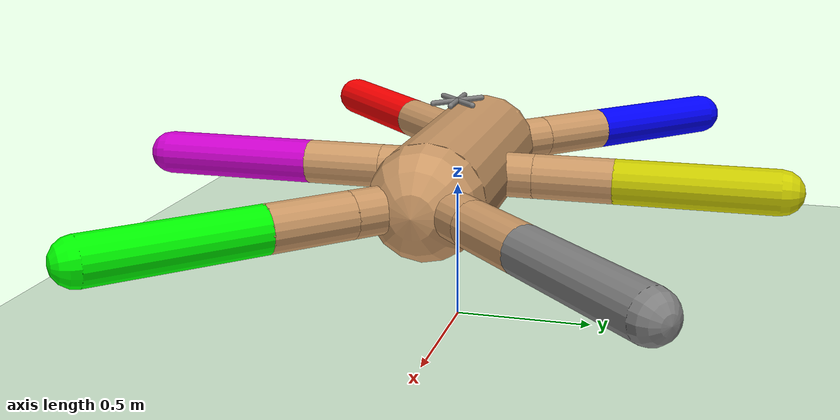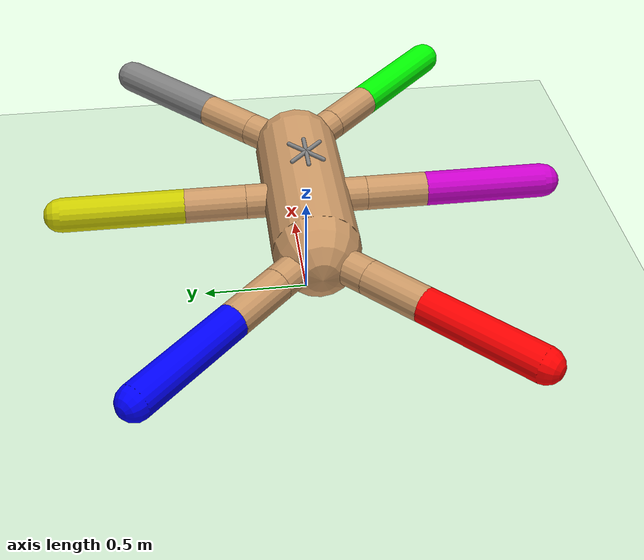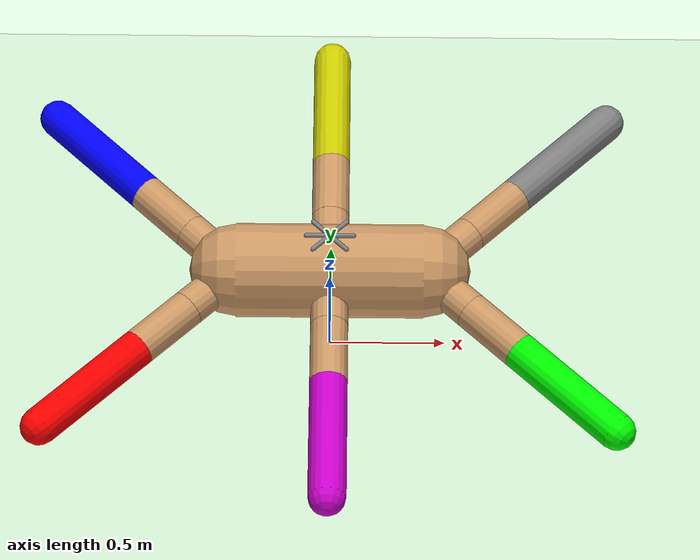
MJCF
<mujoco model="rangefinder-ant">
  <compiler angle="degree" coordinate="local" inertiafromgeom="true"/>
  <option integrator="RK4" timestep="0.01"/>
  <custom>
    <numeric data="0.0 0.0 0.55 1.0 0.0 0.0 0.0 0.0 1.0 0.0 -1.0 0.0 1.0 0.0 -1.0 0.0 -1.0 0.0 -1.0" name="init_qpos"/>
  </custom>
  <default>
    <joint armature="1" damping="1" limited="true"/>
    <geom conaffinity="0" condim="3" density="5.0" friction="1 0.5 0.5" margin="0.01" rgba="0.8 0.6 0.4 1"/>
  </default>
  <asset>
    <texture builtin="gradient" height="100" rgb1="1 1 1" rgb2="0 0 0" type="skybox" width="100"/>
    <texture builtin="flat" height="1278" mark="cross" markrgb="1 1 1" name="texgeom" random="0.01" rgb1="0.8 0.6 0.4" rgb2="0.8 0.6 0.4" type="cube" width="127"/>
    <texture builtin="checker" height="100" name="texplane" rgb1="0 0 0" rgb2="0.8 0.8 0.8" type="2d" width="100"/>
    <material name="MatPlane" reflectance="0.5" shininess="1" specular="1" texrepeat="60 60" texture="texplane"/>
    <material name="geom" texture="texgeom" texuniform="true"/>
  </asset>
  <worldbody>
    <light cutoff="100" diffuse="1 1 1" dir="-0 0 -1.3" directional="true" exponent="1" pos="0 0 1.3" specular=".1 .1 .1"/>
    <geom conaffinity="1" condim="3" material="MatPlane" name="floor" pos="0 0 0" rgba="0.8 0.9 0.8 1" size="40 40 40" type="plane"/>
    <body name="torso" pos="0 0 0.55">
      <camera name="track" mode="trackcom" pos="0 -3 0.3" xyaxes="1 0 0 0 0 1"/>
      <geom name="torso_geom" fromto="-0.4 0 0 0.4 0 0" size="0.2" type="capsule"/>
      <joint armature="0" damping="0" limited="false" margin="0.01" name="root" pos="0 0 0" type="free"/>

      <body name="front_left_leg" pos="0.4 0 0">
        <geom fromto="0.0 0.0 0.0 0.2 0.2 0.0" name="aux_1_geom" size="0.08" type="capsule"/>
        <body name="aux_1" pos="0.2 0.2 0">
          <joint axis="0 0 1" name="hip_1" pos="0.0 0.0 0.0" range="-30 30" type="hinge"/>
          <geom fromto="0.0 0.0 0.0 0.2 0.2 0.0" name="frontleft_leg_geom" size="0.08" type="capsule"/>
          <body pos="0.2 0.2 0">
            <joint axis="-1 1 0" name="ankle_1" pos="0.0 0.0 0.0" range="30 70" type="hinge"/>
            <geom fromto="0.0 0.0 0.0 0.4 0.4 0.0" name="frontleft_ankle_geom" size="0.08" type="capsule" rgba="0.5 0.5 0.5 1"/>
          </body>
        </body>
      </body>

      <body name="middle_left_leg" pos="0 0 0">
        <geom fromto="0.0 0.0 0.0 0 0.2828 0.0" name="aux_5_geom" size="0.08" type="capsule"/>
        <body name="aux_5" pos="0 0.2828 0">
          <joint axis="0 0 1" name="hip_5" pos="0.0 0.0 0.0" range="-30 30" type="hinge"/>
          <geom fromto="0.0 0.0 0.0 0.0 0.2828 0.0" name="midleft_leg_geom" size="0.08" type="capsule"/>
          <body pos="0 0.2828 0">
            <joint axis="-1 0 0" name="ankle_5" pos="0.0 0.0 0.0" range="30 70" type="hinge"/>
            <geom fromto="0.0 0.0 0.0 0 0.5657 0.0" name="midleft_ankle_geom" size="0.08" type="capsule" rgba="0.8 0.8 0 1"/>
          </body>
        </body>
      </body>

      <body name="front_right_leg" pos="0.4 0 0">
        <geom fromto="0.0 0.0 0.0 0.2 -0.2 0.0" name="aux_4_geom" size="0.08" type="capsule"/>
        <body name="aux_4" pos="0.2 -0.2 0">
          <joint axis="0 0 1" name="hip_4" pos="0.0 0.0 0.0" range="-30 30" type="hinge"/>
          <geom fromto="0.0 0.0 0.0 0.2 -0.2 0.0" name="frontright_leg_geom" size="0.08" type="capsule"/>
          <body pos="0.2 -0.2 0">
            <joint axis="1 1 0" name="ankle_4" pos="0.0 0.0 0.0" range="30 70" type="hinge"/>
            <geom fromto="0.0 0.0 0.0 0.4 -0.4 0.0" name="frontright_ankle_geom" size="0.08" type="capsule" rgba="0 1 0 1"/>
          </body>
        </body>
      </body>

      <body name="back_left_leg" pos="-0.4 0 0">
        <geom fromto="0.0 0.0 0.0 -0.2 0.2 0.0" name="aux_2_geom" size="0.08" type="capsule"/>
        <body name="aux_2" pos="-0.2 0.2 0">
          <joint axis="0 0 1" name="hip_2" pos="0.0 0.0 0.0" range="-30 30" type="hinge"/>
          <geom fromto="0.0 0.0 0.0 -0.2 0.2 0.0" name="backleft_leg_geom" size="0.08" type="capsule"/>
          <body pos="-0.2 0.2 0">
            <joint axis="1 1 0" name="ankle_2" pos="0.0 0.0 0.0" range="-70 -30" type="hinge"/>
            <geom fromto="0.0 0.0 0.0 -0.4 0.4 0.0" name="backleft_ankle_geom" size="0.08" type="capsule" rgba="0 0 1 1"/>
          </body>
        </body>
      </body>

      <body name="middle_right_leg" pos="0 0 0">
        <geom fromto="0.0 0.0 0.0 0.0 -0.2828 0.0" name="aux_6_geom" size="0.08" type="capsule"/>
        <body name="aux_6" pos="0 -0.2828 0">
          <joint axis="0 0 1" name="hip_6" pos="0.0 0.0 0.0" range="-30 30" type="hinge"/>
          <geom fromto="0.0 0.0 0.0 0 -0.2828 0.0" name="midright_leg_geom" size="0.08" type="capsule"/>
          <body pos="0 -0.2828 0">
            <joint axis="1 0 0" name="ankle_6" pos="0.0 0.0 0.0" range="30 70" type="hinge"/>
            <geom fromto="0.0 0.0 0.0 0 -0.5657 0.0" name="midright_ankle_geom" size="0.08" type="capsule" rgba="0.8 0 0.8 1"/>
          </body>
        </body>
      </body>

      <body name="back_right_leg" pos="-0.4 0 0">
        <geom fromto="0.0 0.0 0.0 -0.2 -0.2 0.0" name="aux_3_geom" size="0.08" type="capsule"/>
        <body name="aux_3" pos="-0.2 -0.2 0">
          <joint axis="0 0 1" name="hip_3" pos="0.0 0.0 0.0" range="-30 30" type="hinge"/>
          <geom fromto="0.0 0.0 0.0 -0.2 -0.2 0.0" name="backright_leg_geom" size="0.08" type="capsule"/>
          <body pos="-0.2 -0.2 0">
            <joint axis="-1 1 0" name="ankle_3" pos="0.0 0.0 0.0" range="-70 -30" type="hinge"/>
            <geom fromto="0.0 0.0 0.0 -0.4 -0.4 0.0" name="backright_ankle_geom" size="0.08" type="capsule" rgba="1 0 0 1"/>
          </body>
        </body>
      </body>
      <site name="sensor_front" type="capsule" size="0.01 0.1" pos="0.0 0.0 0.26" zaxis="1.0 0.0 0.0" />
      <site name="sensor_left"  type="capsule" size="0.01 0.1" pos="0.0 0.0 0.26" zaxis="0.7071 0.7071 0.0" />
      <site name="sensor_right" type="capsule" size="0.01 0.1" pos="0.0 0.0 0.26" zaxis="0.7071 -0.7071 0.0" />
    </body>
  </worldbody>
  <actuator>
    <motor ctrllimited="true" ctrlrange="-1.0 1.0" joint="hip_4" gear="150"/>
    <motor ctrllimited="true" ctrlrange="-1.0 1.0" joint="ankle_4" gear="150"/>
    <motor ctrllimited="true" ctrlrange="-1.0 1.0" joint="hip_1" gear="150"/>
    <motor ctrllimited="true" ctrlrange="-1.0 1.0" joint="ankle_1" gear="150"/>
    <motor ctrllimited="true" ctrlrange="-1.0 1.0" joint="hip_3" gear="150"/>
    <motor ctrllimited="true" ctrlrange="-1.0 1.0" joint="ankle_3" gear="150"/>
    <motor ctrllimited="true" ctrlrange="-1.0 1.0" joint="hip_2" gear="150"/>
    <motor ctrllimited="true" ctrlrange="-1.0 1.0" joint="ankle_2" gear="150"/>
    <motor ctrllimited="true" ctrlrange="-1.0 1.0" joint="hip_6" gear="150"/>
    <motor ctrllimited="true" ctrlrange="-1.0 1.0" joint="ankle_6" gear="150"/>
    <motor ctrllimited="true" ctrlrange="-1.0 1.0" joint="hip_5" gear="150"/>
    <motor ctrllimited="true" ctrlrange="-1.0 1.0" joint="ankle_5" gear="150"/>
  </actuator>
  <sensor>
    <rangefinder name="rf_left"  site="sensor_left" />
    <rangefinder name="rf_front" site="sensor_front" />
    <rangefinder name="rf_right" site="sensor_right" />
  </sensor>
</mujoco>
